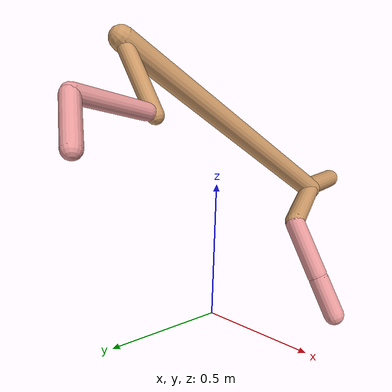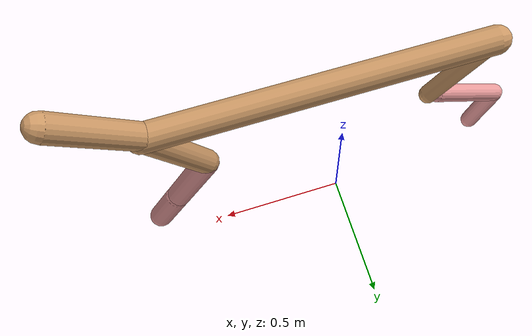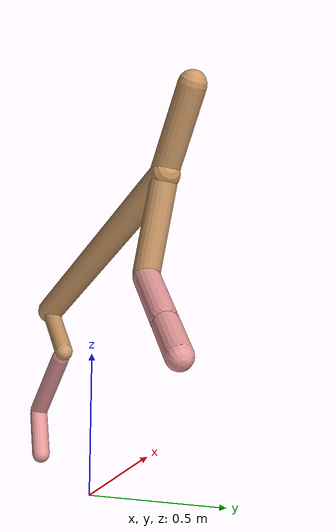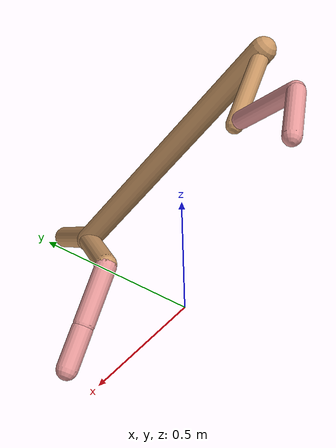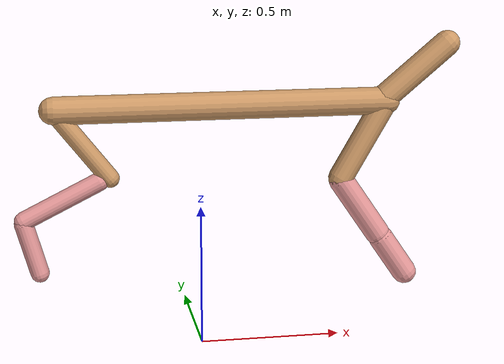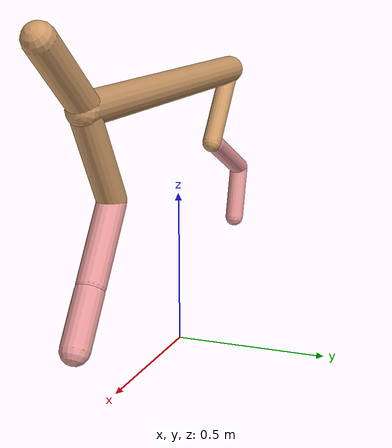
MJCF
<mujoco model="cheetah">
  <compiler angle="radian" coordinate="local" inertiafromgeom="true" settotalmass="14" />
  <default>
    <joint armature=".1" damping=".01" limited="true" solimplimit="0 .8 .03" solreflimit=".02 1" stiffness="8" />
    <geom conaffinity="0" condim="3" contype="1" friction="0.8 .1 .1" rgba="0.8 0.6 .4 1" solimp="0.0 0.8 0.01" solref="0.02 1" />
    <motor ctrllimited="true" ctrlrange="-1 1" />
  </default>
  <size nstack="300000" nuser_geom="1" />
  <option gravity="0 0 -9.81" timestep="0.01" />
  <worldbody>
    <body name="torso" pos="0.0 0.0 0.8602296656350393">
      <joint armature="0" axis="1 0 0" damping="0" limited="false" name="ignorex" pos="0 0 0" stiffness="0" type="slide" />
      <joint armature="0" axis="0 0 1" damping="0" limited="false" name="ignorez" pos="0 0 0" stiffness="0" type="slide" />
      <joint armature="0" axis="0 1 0" damping="0" limited="false" name="ignorey" pos="0 0 0" stiffness="0" type="hinge" />
      <geom fromto="-0.5 0.0 0.0 0.6573650937303629 0.0 0.0" name="torso" size="0.04855555144205891" type="capsule" />
      <geom axisangle="0 1 0 .87" name="head" pos="0.757365093730363 0.0 0.1" size="0.04561323518654302 0.15" type="capsule" />

      <body name="bthigh" pos="-.5 0 0">
        <joint axis="0 1 0" damping="6" name="bthigh" pos="0 0 0" range="-.52 1.05" stiffness="240" type="hinge" />
        <geom axisangle="0 1 0 -3.8" name="bthigh" pos="0.09867400742284668 0.0 -0.12827620964970068" size="0.03276868970494933 0.14282521047306854" type="capsule" />
        <body name="bshin" pos="0.15734801484569336 0.0 -0.24655241929940136">
          <joint axis="0 1 0" damping="4.5" name="bshin" pos="0 0 0" range="-.785 .785" stiffness="180" type="hinge" />
          <geom axisangle="0 1 0 -2.03" name="bshin" pos="-0.13798773356456276 0.0 -0.06899386678228138" rgba="0.9 0.6 0.6 1" size="0.03276868970494933 0.14775021773076055" type="capsule" />
          <body name="bfoot" pos="-0.2759754671291255 0.0 -0.13798773356456276">
            <joint axis="0 1 0" damping="3" name="bfoot" pos="0 0 0" range="-.4 .785" stiffness="120" type="hinge" />
            <geom axisangle="0 1 0 -.27" name="bfoot" pos="0.02958342800593098 0.0 -0.09565308388584351" rgba="0.9 0.6 0.6 1" size="0.03276868970494933 0.09259013644460995" type="capsule" />
            <inertial mass="10" />
          </body>
        </body>
      </body>
      <body name="fthigh" pos="0.657365093730363 0.0 0.0">
        <joint axis="0 1 0" damping="4.5" name="fthigh" pos="0 0 0" range="-1.5 0.8" stiffness="180" type="hinge" />
        <geom axisangle="0 1 0 .52" name="fthigh" pos="-0.08123197325356367 0.0 -0.1392548112918234" size="0.04371615202513737 0.1552913656165902" type="capsule" />
        <body name="fshin" pos="-0.16246394650712734 0.0 -0.2785096225836468">
          <joint axis="0 1 0" damping="3" name="fshin" pos="0 0 0" range="-1.2 1.1" stiffness="120" type="hinge" />
          <geom axisangle="0 1 0 -.6" name="fshin" pos="0.07540185491793441 0.0 -0.10440256834790917" rgba="0.9 0.6 0.6 1" size="0.04371615202513737 0.12376605079216962" type="capsule" />
          <body name="ffoot" pos="0.15080370983586883 0.0 -0.20880513669581835">
            <joint axis="0 1 0" damping="1.5" name="ffoot" pos="0 0 0" range="-3.1 -0.3" stiffness="60" type="hinge" />
            <geom axisangle="0 1 0 -.6" name="ffoot" pos="0.051344329041008344 0.0 -0.079868956286013" rgba="0.9 0.6 0.6 1" size="0.04371615202513737 0.08173229769294221" type="capsule" />
            <inertial mass="10" />
          </body>
        </body>
      </body>
    </body>
  </worldbody>
  <actuator>
    <motor gear="120" joint="bthigh" name="bthigh" />
    <motor gear="90" joint="bshin" name="bshin" />
    <motor gear="60" joint="bfoot" name="bfoot" />
    <motor gear="120" joint="fthigh" name="fthigh" />
    <motor gear="60" joint="fshin" name="fshin" />
    <motor gear="30" joint="ffoot" name="ffoot" />
  </actuator>
</mujoco>
